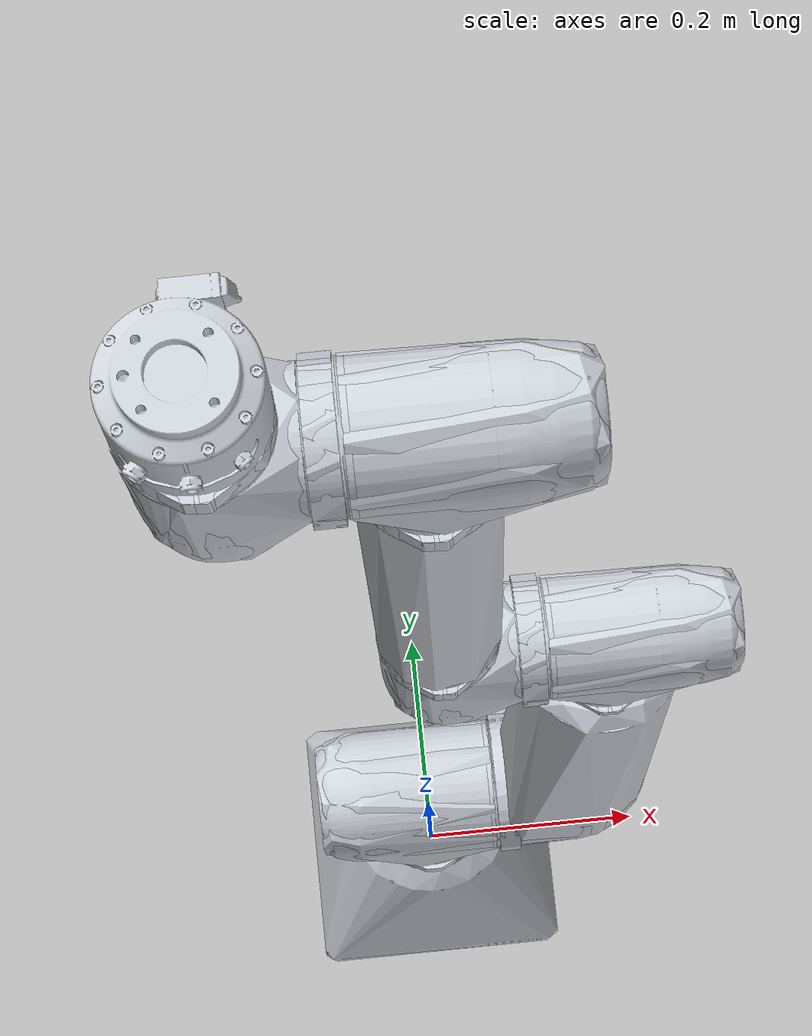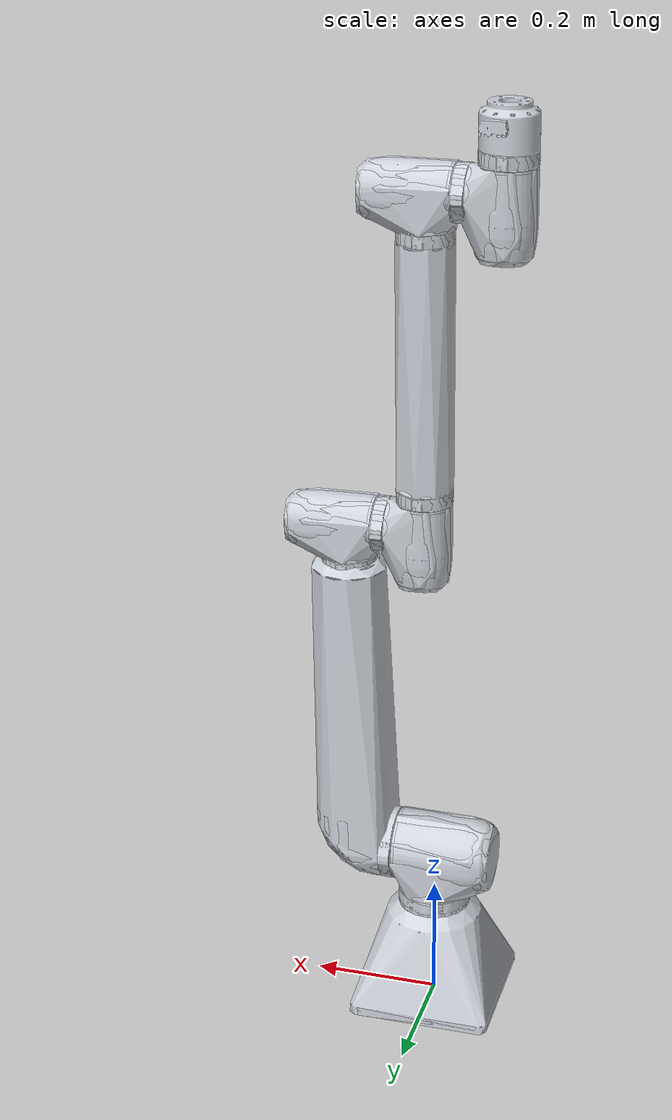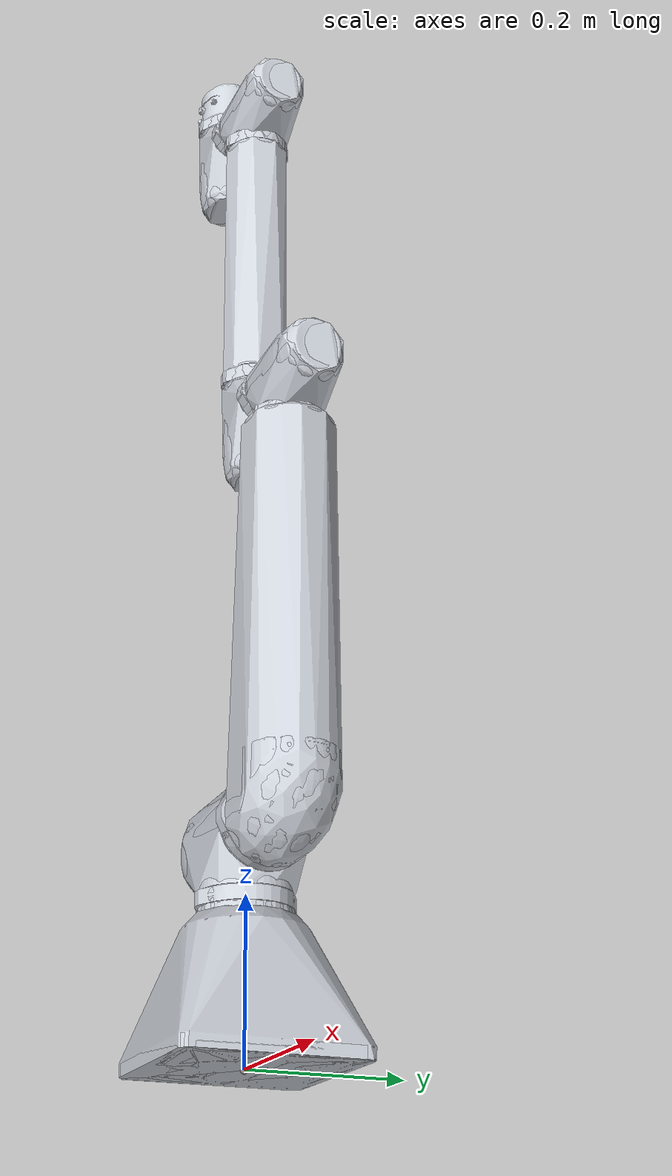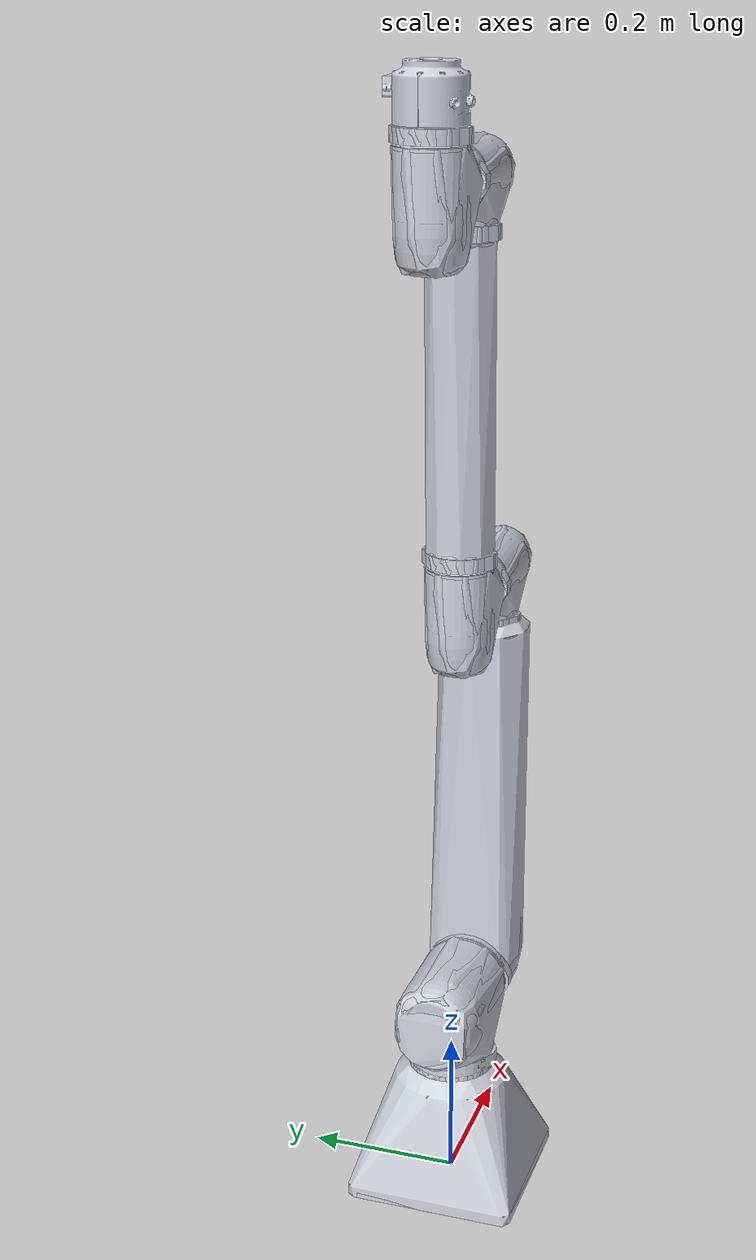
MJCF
<mujoco model="robco">
  <include file="base.xml"/>
  <default>
    <default class="robot">
      <default class="motor">
        <joint />
        <motor />
      </default>
      <default class="visual">
        <geom material="visualgeom" contype="1" conaffinity="0" group="2" />
      </default>
      <default class="collision">
        <geom material="collision_material" condim="3" contype="1" conaffinity="1" priority="1" group="1" solref="0.005 1" solimp="0.99 0.999 1e-05" friction="1 0.01 0.01" />
      </default>
    </default>
  </default>

  <compiler angle="radian" />

  <asset>
    <material name="default_material" rgba="0.7 0.7 0.7 1" />
  <!-- Baby-blue material for C86 meshes -->
  <material name="C86_material" rgba="0.54 0.81 0.94 1" />
  <material name="visualgeom" rgba="0.54 0.81 0.94 1" />
    <material name="collision_material" rgba="1.0 0.28 0.1 0.9" />
    <mesh name="BD116_proximal_part_convdec.stl" file="urdf/BD116_proximal_part_convdec.stl" maxhullvert="4"/>
    <mesh name="BD116-proximal.obj" file="urdf/BD116-proximal.obj" maxhullvert="4"/>
    <mesh name="BD116_distal_part_convdec.stl" file="urdf/BD116_distal_part_convdec.stl" maxhullvert="4"/>
    <mesh name="BD116-distal.obj" file="urdf/BD116-distal.obj" maxhullvert="4"/>
    <mesh name="C116_convdec.stl" file="urdf/C116_convdec.stl" maxhullvert="4"/>
    <mesh name="C116.stl" file="urdf/C116.stl" maxhullvert="4"/>
    <mesh name="D116-876.0002-G-proximal_convdec.stl" file="urdf/D116-876.0002-G-proximal_convdec.stl" maxhullvert="4"/>
    <mesh name="D116-G-proximal.obj" file="urdf/D116-G-proximal.obj" maxhullvert="4"/>
    <mesh name="D116-876.0002-G-distal_convdec.stl" file="urdf/D116-876.0002-G-distal_convdec.stl" maxhullvert="4"/>
    <mesh name="D116-G-distal.obj" file="urdf/D116-G-distal.obj" maxhullvert="4"/>
    <mesh name="L116-500_convdec.stl" file="urdf/L116-500_convdec.stl" maxhullvert="4"/>
    <mesh name="L116-500.obj" file="urdf/L116-500.obj" maxhullvert="4"/>
    <mesh name="C86_convdec.stl" file="urdf/C86_convdec.stl" maxhullvert="4"/>
    <mesh name="C86.stl" file="urdf/C86.stl" maxhullvert="4"/>
    <mesh name="D86-876.0001-H-proximal_convdec.stl" file="urdf/D86-876.0001-H-proximal_convdec.stl" maxhullvert="4"/>
    <mesh name="D86-H-proximal.obj" file="urdf/D86-H-proximal.obj" maxhullvert="4"/>
    <mesh name="D86-876.0001-H-distal_convdec.stl" file="urdf/D86-876.0001-H-distal_convdec.stl" maxhullvert="4"/>
    <mesh name="D86-H-distal.obj" file="urdf/D86-H-distal.obj" maxhullvert="4"/>
    <mesh name="C86.obj" file="urdf/C86.obj" maxhullvert="4"/>
    <mesh name="I86-400_convdec.stl" file="urdf/I86-400_convdec.stl" maxhullvert="4"/>
    <mesh name="I86-400.obj" file="urdf/I86-400.obj" maxhullvert="4"/>
    <mesh name="E86-IO-ISO50.stl" file="urdf/E86-IO-ISO50.stl" maxhullvert="4"/>
  </asset>

  <worldbody>
    <body name="joint0" pos="0.00000000 0.00000000 0.00000000" quat="1 0 0 0" childclass="robot">
  <!-- Fixed base: no joint element -> body is welded to the world (compatible with older MuJoCo versions) -->
      <geom name="joint0_collision" pos="0 0 0" quat="1 0 0 0" type="mesh" mesh="BD116_proximal_part_convdec.stl" class="collision" />
      <geom name="joint0_visual" pos="0 0 0" quat="1 0 0 0" material="default_material" type="mesh" mesh="BD116-proximal.obj" class="visual" />
      <body name="joint0_shaft" pos="0 0 0.1887" quat="1.0 0.0 0.0 0.0">
        <body name="joint0_distal" pos="0 0 0" quat="1.0 0.0 0.0 0.0">
          <joint name="joint0_joint" type="hinge" ref="0.0" class="motor" range="-4.7124 4.7124" axis="0 0 1" />
          <inertial pos="-8e-06 1e-05 -0.1098723" quat="1.0 0.0 0.0 0.0" mass="0.375" diaginertia="0.0016854 0.0016853 0.0004321" />
          <geom name="joint0_distal_collision" pos="0 0 0" quat="1 0 0 0" type="mesh" mesh="BD116_distal_part_convdec.stl" class="collision" />
          <geom name="joint0_distal_visual" pos="0 0 0" quat="1 0 0 0" material="default_material" type="mesh" mesh="BD116-distal.obj" class="visual" />
          <body name="link0" pos="0 0 0" quat="1 0 0 0">
            <inertial pos="0 0 0" quat="1.0 0.0 0.0 0.0" mass="0.1932" diaginertia="0.000273 0.000273 0.0005344" />
            <geom name="link0_collision" pos="0 0 0" quat="1 0 0 0" type="mesh" mesh="C116_convdec.stl" class="collision" />
            <geom name="link0_visual" pos="0 0 0" quat="1 0 0 0" material="default_material" type="mesh" mesh="C116.stl" class="visual" />
            <body name="joint1" pos="0 0 0" quat="1.0 0.0 0.0 0.0">
              <inertial pos="0.0072024 0.0003068 0.0734292" quat="1.0 0.0 0.0 0.0" mass="3.594" diaginertia="0.0280533 0.0290088 0.0079424" />
              <geom name="joint1_collision" pos="0 0 0" quat="1 0 0 0" type="mesh" mesh="D116-876.0002-G-proximal_convdec.stl" class="collision" />
              <geom name="joint1_visual" pos="0 0 0" quat="1 0 0 0" material="default_material" type="mesh" mesh="D116-G-proximal.obj" class="visual" />
              <body name="joint1_shaft" pos="0 0 0.082" quat="0.5000000000000001 0.5 0.4999999999999999 0.5">
                <body name="joint1_distal" pos="0 0 0.0702" quat="0.7071067811865476 0.0 0.0 0.7071067811865475">
                  <joint name="joint1_joint" type="hinge" ref="0.0" class="motor" range="-4.7124 4.7124" axis="0 0 1" />
                  <inertial pos="-8e-06 1e-05 -0.0396723" quat="1.0 0.0 0.0 0.0" mass="0.375" diaginertia="0.0016854 0.0016853 0.0004321" />
                  <geom name="joint1_distal_collision" pos="0 0 0" quat="1 0 0 0" type="mesh" mesh="D116-876.0002-G-distal_convdec.stl" class="collision" />
                  <geom name="joint1_distal_visual" pos="0 0 0" quat="1 0 0 0" material="default_material" type="mesh" mesh="D116-G-distal.obj" class="visual" />
                  <body name="link1" pos="0 0 0" quat="1 0 0 0">
                    <inertial pos="0 0 0" quat="1.0 0.0 0.0 0.0" mass="0.1932" diaginertia="0.000273 0.000273 0.0005344" />
                    <geom name="link1_collision" pos="0 0 0" quat="1 0 0 0" type="mesh" mesh="C116_convdec.stl" class="collision" />
                    <geom name="link1_visual" pos="0 0 0" quat="1 0 0 0" material="default_material" type="mesh" mesh="C116.stl" class="visual" />
                    <body name="link2" pos="0 0 0" quat="1.0 0.0 0.0 0.0">
                      <inertial pos="0.2118139 0 0.0592073" quat="1.0 0.0 0.0 0.0" mass="2.2800848" diaginertia="0.0127649 0.1922432 0.1839478" />
                      <geom name="link2_collision" pos="0 0 0" quat="1 0 0 0" type="mesh" mesh="L116-500_convdec.stl" class="collision" />
                      <geom name="link2_visual" pos="0 0 0" quat="1 0 0 0" material="default_material" type="mesh" mesh="L116-500.obj" class="visual" />
                      <body name="link3" pos="0.5 0 0.068" quat="0.7071067811865476 0.0 0.7071067811865475 0.0">
                        <inertial pos="0 0 0" quat="1.0 0.0 0.0 0.0" mass="0.1168" diaginertia="9.22e-05 9.22e-05 0.0001773" />
                        <geom name="link3_collision" pos="0 0 0" quat="1 0 0 0" type="mesh" mesh="C86_convdec.stl" class="collision" />
                        <geom name="link3_visual" pos="0 0 0" quat="1 0 0 0" material="C86_material" type="mesh" mesh="C86.stl" class="visual" />
                        <body name="joint2" pos="0 0 0" quat="1.0 0.0 0.0 0.0">
                          <inertial pos="-0.00188062 0.00025219 0.0583335" quat="1.0 0.0 0.0 0.0" mass="1.777" diaginertia="0.008585 0.00939383 0.00272493" />
                          <geom name="joint2_collision" pos="0 0 0" quat="1 0 0 0" type="mesh" mesh="D86-876.0001-H-proximal_convdec.stl" class="collision" />
                          <geom name="joint2_visual" pos="0 0 0" quat="1 0 0 0" material="default_material" type="mesh" mesh="D86-H-proximal.obj" class="visual" />
                          <body name="joint2_shaft" pos="0 0 0.064" quat="0.5000000000000001 0.5 0.4999999999999999 0.5">
                            <body name="joint2_distal" pos="0 0 0.0552" quat="0.7071067811865476 0.0 0.0 0.7071067811865475">
                              <joint name="joint2_joint" type="hinge" ref="0.0" class="motor" range="-4.7124 4.7124" axis="0 0 1" />
                              <inertial pos="0 0 -0.0254142" quat="1.0 0.0 0.0 0.0" mass="0.177" diaginertia="0.00035144 0.00035151 0.00012592" />
                              <geom name="joint2_distal_collision" pos="0 0 0" quat="1 0 0 0" type="mesh" mesh="D86-876.0001-H-distal_convdec.stl" class="collision" />
                              <geom name="joint2_distal_visual" pos="0 0 0" quat="1 0 0 0" material="default_material" type="mesh" mesh="D86-H-distal.obj" class="visual" />
                              <body name="link4" pos="0 0 0" quat="1 0 0 0">
                                <inertial pos="0 0 0" quat="1.0 0.0 0.0 0.0" mass="0.1168" diaginertia="9.22e-05 9.22e-05 0.0001773" />
                                <geom name="link4_collision" pos="0 0 0" quat="1 0 0 0" type="mesh" mesh="C86_convdec.stl" class="collision" />
                                <geom name="link4_visual" pos="0 0 0" quat="1 0 0 0" material="C86_material" type="mesh" mesh="C86.stl" class="visual" />
                                <body name="joint3" pos="0 0 0" quat="1.0 0.0 0.0 0.0">
                                  <inertial pos="-0.00188062 0.00025219 0.0583335" quat="1.0 0.0 0.0 0.0" mass="1.777" diaginertia="0.008585 0.00939383 0.00272493" />
                                  <geom name="joint3_collision" pos="0 0 0" quat="1 0 0 0" type="mesh" mesh="D86-876.0001-H-proximal_convdec.stl" class="collision" />
                                  <geom name="joint3_visual" pos="0 0 0" quat="1 0 0 0" material="default_material" type="mesh" mesh="D86-H-proximal.obj" class="visual" />
                                  <body name="joint3_shaft" pos="0 0 0.064" quat="0.5000000000000001 0.5 0.4999999999999999 0.5">
                                    <body name="joint3_distal" pos="0 0 0.0552" quat="0.7071067811865476 0.0 0.0 0.7071067811865475">
                                      <joint name="joint3_joint" type="hinge" ref="0.0" class="motor" range="-4.7124 4.7124" axis="0 0 1" />
                                      <inertial pos="0 0 -0.0254142" quat="1.0 0.0 0.0 0.0" mass="0.177" diaginertia="0.00035144 0.00035151 0.00012592" />
                                      <geom name="joint3_distal_collision" pos="0 0 0" quat="1 0 0 0" type="mesh" mesh="D86-876.0001-H-distal_convdec.stl" class="collision" />
                                      <geom name="joint3_distal_visual" pos="0 0 0" quat="1 0 0 0" material="default_material" type="mesh" mesh="D86-H-distal.obj" class="visual" />
                                      <body name="link5" pos="0 0 0" quat="1 0 0 0">
                                        <inertial pos="0 0 0" quat="1.0 0.0 0.0 0.0" mass="0.1168" diaginertia="9.22e-05 9.22e-05 0.0001773" />
                                        <geom name="link5_collision" pos="0 0 0" quat="1 0 0 0" type="mesh" mesh="C86_convdec.stl" class="collision" />
                                        <geom name="link5_visual" pos="0 0 0" quat="1 0 0 0" material="C86_material" type="mesh" mesh="C86.obj" class="visual" />
                                        <body name="link6" pos="0 0 0" quat="1.0 0.0 0.0 0.0">
                                          <inertial pos="1.01e-05 -1e-05 0.2013692" quat="1.0 0.0 0.0 0.0" mass="1.2" diaginertia="0.0637213 0.0637211 0.0010042" />
                                          <geom name="link6_collision" pos="0 0 0" quat="1 0 0 0" type="mesh" mesh="I86-400_convdec.stl" class="collision" />
                                          <geom name="link6_visual" pos="0 0 0" quat="1 0 0 0" material="default_material" type="mesh" mesh="I86-400.obj" class="visual" />
                                          <body name="link7" pos="0 0 0.4" quat="1.0 0.0 0.0 0.0">
                                            <inertial pos="0 0 0" quat="1.0 0.0 0.0 0.0" mass="0.1168" diaginertia="9.22e-05 9.22e-05 0.0001773" />
                                            <geom name="link7_collision" pos="0 0 0" quat="1 0 0 0" type="mesh" mesh="C86_convdec.stl" class="collision" />
                                            <geom name="link7_visual" pos="0 0 0" quat="1 0 0 0" material="C86_material" type="mesh" mesh="C86.stl" class="visual" />
                                            <body name="joint4" pos="0 0 0" quat="1.0 0.0 0.0 0.0">
                                              <inertial pos="-0.00188062 0.00025219 0.0583335" quat="1.0 0.0 0.0 0.0" mass="1.777" diaginertia="0.008585 0.00939383 0.00272493" />
                                              <geom name="joint4_collision" pos="0 0 0" quat="1 0 0 0" type="mesh" mesh="D86-876.0001-H-proximal_convdec.stl" class="collision" />
                                              <geom name="joint4_visual" pos="0 0 0" quat="1 0 0 0" material="default_material" type="mesh" mesh="D86-H-proximal.obj" class="visual" />
                                              <body name="joint4_shaft" pos="0 0 0.064" quat="0.5000000000000001 0.5 0.4999999999999999 0.5">
                                                <body name="joint4_distal" pos="0 0 0.0552" quat="0.7071067811865476 0.0 0.0 0.7071067811865475">
                                                  <joint name="joint4_joint" type="hinge" ref="0.0" class="motor" range="-4.7124 4.7124" axis="0 0 1" />
                                                  <inertial pos="0 0 -0.0254142" quat="1.0 0.0 0.0 0.0" mass="0.177" diaginertia="0.00035144 0.00035151 0.00012592" />
                                                  <geom name="joint4_distal_collision" pos="0 0 0" quat="1 0 0 0" type="mesh" mesh="D86-876.0001-H-distal_convdec.stl" class="collision" />
                                                  <geom name="joint4_distal_visual" pos="0 0 0" quat="1 0 0 0" material="default_material" type="mesh" mesh="D86-H-distal.obj" class="visual" />
                                                  <body name="link8" pos="0 0 0" quat="1 0 0 0">
                                                    <inertial pos="0 0 0" quat="1.0 0.0 0.0 0.0" mass="0.1168" diaginertia="9.22e-05 9.22e-05 0.0001773" />
                                                    <geom name="link8_collision" pos="0 0 0" quat="1 0 0 0" type="mesh" mesh="C86_convdec.stl" class="collision" />
                                                    <geom name="link8_visual" pos="0 0 0" quat="1 0 0 0" material="C86_material" type="mesh" mesh="C86.stl" class="visual" />
                                                    <body name="joint5" pos="0 0 0" quat="1.0 0.0 0.0 0.0">
                                                      <inertial pos="-0.00188062 0.00025219 0.0583335" quat="1.0 0.0 0.0 0.0" mass="1.777" diaginertia="0.008585 0.00939383 0.00272493" />
                                                      <geom name="joint5_collision" pos="0 0 0" quat="1 0 0 0" type="mesh" mesh="D86-876.0001-H-proximal_convdec.stl" class="collision" />
                                                      <geom name="joint5_visual" pos="0 0 0" quat="1 0 0 0" material="default_material" type="mesh" mesh="D86-H-proximal.obj" class="visual" />
                                                      <body name="joint5_shaft" pos="0 0 0.064" quat="0.5000000000000001 0.5 0.4999999999999999 0.5">
                                                        <body name="joint5_distal" pos="0 0 0.0552" quat="0.7071067811865476 0.0 0.0 0.7071067811865475">
                                                          <joint name="joint5_joint" type="hinge" ref="0.0" class="motor" range="-4.7124 4.7124" axis="0 0 1" />
                                                          <inertial pos="0 0 -0.0254142" quat="1.0 0.0 0.0 0.0" mass="0.177" diaginertia="0.00035144 0.00035151 0.00012592" />
                                                          <geom name="joint5_distal_collision" pos="0 0 0" quat="1 0 0 0" type="mesh" mesh="D86-876.0001-H-distal_convdec.stl" class="collision" />
                                                          <geom name="joint5_distal_visual" pos="0 0 0" quat="1 0 0 0" material="default_material" type="mesh" mesh="D86-H-distal.obj" class="visual" />
                                                          <body name="link9" pos="0 0 0" quat="1 0 0 0">
                                                            <inertial pos="0 0 0" quat="1.0 0.0 0.0 0.0" mass="0.1168" diaginertia="9.22e-05 9.22e-05 0.0001773" />
                                                            <geom name="link9_collision" pos="0 0 0" quat="1 0 0 0" type="mesh" mesh="C86_convdec.stl" class="collision" />
                                                            <geom name="link9_visual" pos="0 0 0" quat="1 0 0 0" material="C86_material" type="mesh" mesh="C86.stl" class="visual" />
                                                            <body name="tool" pos="0 0 0" quat="1.0 0.0 0.0 0.0">
                                                              <inertial pos="0.00013211 0.00035272 0.03680274" quat="1.0 0.0 0.0 0.0" mass="0.47903106" diaginertia="0.00118607 0.00114246 0.00057065" />
                                                              <geom name="tool_visual" pos="0 0 0" quat="1 0 0 0" material="default_material" type="mesh" mesh="E86-IO-ISO50.stl" class="visual" />
                                                            </body>
                                                          </body>
                                                        </body>
                                                      </body>
                                                    </body>
                                                  </body>
                                                </body>
                                              </body>
                                            </body>
                                          </body>
                                        </body>
                                      </body>
                                    </body>
                                  </body>
                                </body>
                              </body>
                            </body>
                          </body>
                        </body>
                      </body>
                    </body>
                  </body>
                </body>
              </body>
            </body>
          </body>
        </body>
      </body>
      <site name="joint0_site" pos="0 0 0" quat="1 0 0 0" />
      <camera name="front_camera" mode="track" fovy="90.0" quat="4.329780281177467e-17 4.329780281177466e-17 0.7071067811865475 0.7071067811865476" pos="0.0 2.0 0.5" />
      <camera name="side_camera" mode="track" fovy="90.0" quat="-0.5 -0.4999999999999999 0.5 0.5000000000000001" pos="-2.0 0.0 0.5" />
    </body>
  </worldbody>

  <actuator>
    <motor name="joint0_joint_ctrl" joint="joint0_joint" class="motor" />
    <motor name="joint1_joint_ctrl" joint="joint1_joint" class="motor" />
    <motor name="joint2_joint_ctrl" joint="joint2_joint" class="motor" />
    <motor name="joint3_joint_ctrl" joint="joint3_joint" class="motor" />
    <motor name="joint4_joint_ctrl" joint="joint4_joint" class="motor" />
    <motor name="joint5_joint_ctrl" joint="joint5_joint" class="motor" />
  </actuator>

  <contact>
    <exclude body1="joint0_distal" body2="link0" />
    <exclude body1="link0" body2="joint1" />
    <exclude body1="joint1_distal" body2="link1" />
    <exclude body1="link1" body2="link2" />
    <exclude body1="link2" body2="link3" />
    <exclude body1="link3" body2="joint2" />
    <exclude body1="joint2_distal" body2="link4" />
    <exclude body1="link4" body2="joint3" />
    <exclude body1="joint3_distal" body2="link5" />
    <exclude body1="link5" body2="link6" />
    <exclude body1="link6" body2="link7" />
    <exclude body1="link7" body2="joint4" />
    <exclude body1="joint4_distal" body2="link8" />
    <exclude body1="link8" body2="joint5" />
    <exclude body1="joint5_distal" body2="link9" />
  </contact>

  <sensor>
    <framepos name="joint0_site_pos" objtype="site" objname="joint0_site" />
    <framequat name="joint0_site_quat" objtype="site" objname="joint0_site" />
    <framelinvel name="joint0_site_linvel" objtype="site" objname="joint0_site" />
    <frameangvel name="joint0_site_angvel" objtype="site" objname="joint0_site" />
    <velocimeter name="joint0_site_vel" site="joint0_site" />
  </sensor>
</mujoco>

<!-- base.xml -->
<mujocoinclude>
    <compiler angle="degree" coordinate="local" inertiafromgeom="true"/>
    <option integrator="RK4" timestep="0.01"/>
    <default>
        <joint armature="0.1" damping="1" limited="true"/>
        <geom conaffinity="1" contype="1" condim="3" density="800" friction="1 0.5 0.5" margin="0" rgba="0.8 0.82 0.85 1"/>
    </default>
    <asset>
        <texture type="skybox" builtin="gradient" rgb1="0.6 0.6 0.6" rgb2="0 0 0" width="1024" height="1024"/>
        <texture name="texplane" type="2d" builtin="checker" rgb1=".2 .3 .4" rgb2=".1 .15 .2" width="512" height="512" mark="cross" markrgb=".8 .8 .8"/>
        <material name="matplane" reflectance="0.3" texture="texplane" texrepeat="1 1" texuniform="true"/>
        <!-- Material for objects -->
        <material name="red" rgba="0.8 0.1 0.1 1"/>
        <material name="green" rgba="0.1 0.8 0.1 1"/>
        <material name="blue" rgba="0.1 0.1 0.8 1"/>
    </asset>
</mujocoinclude>
